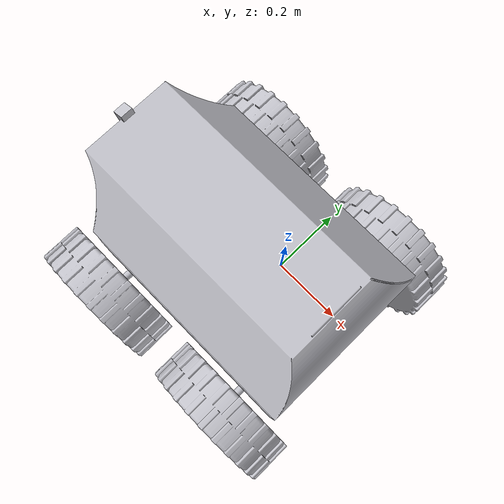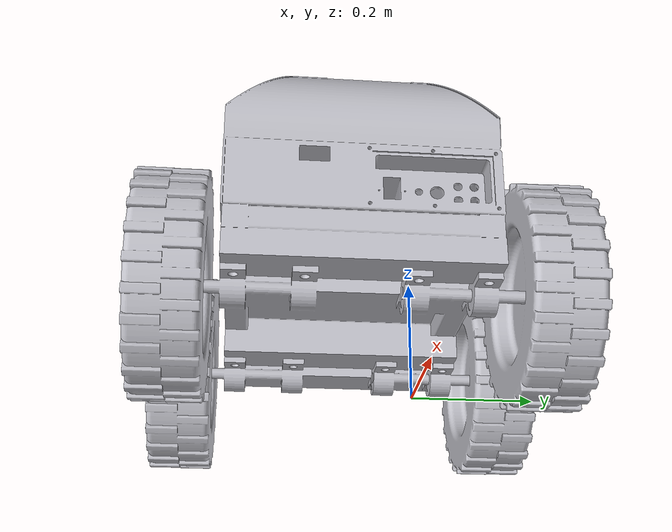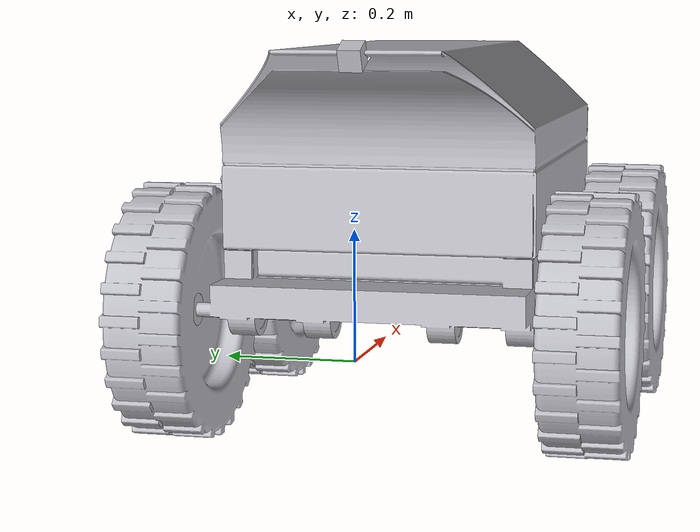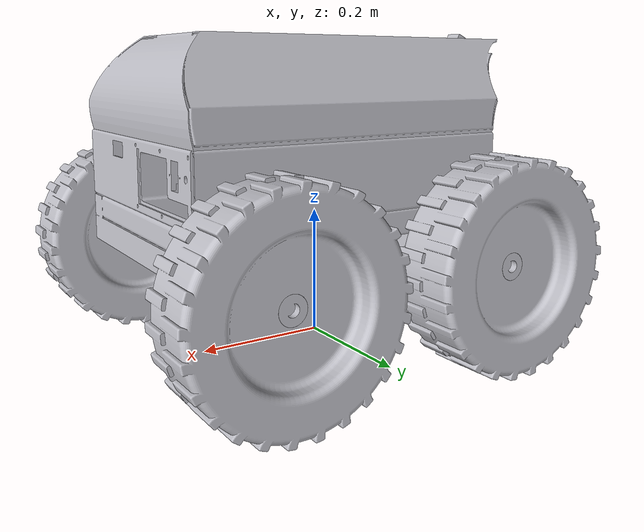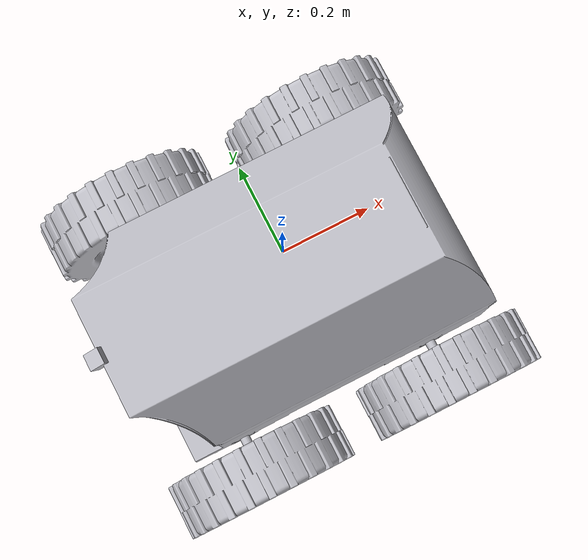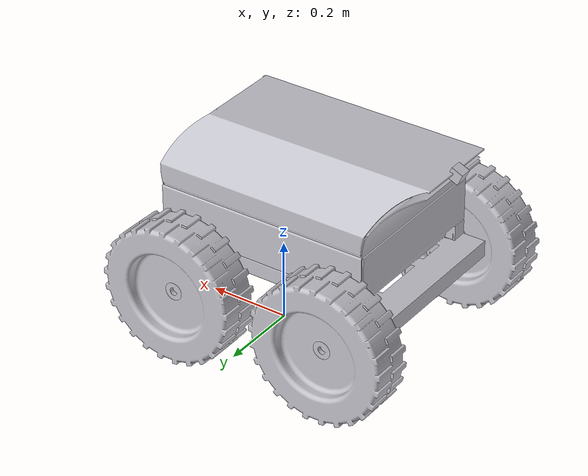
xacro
<robot name="Robot" xmlns:xacro="http://www.ros.org/wiki/xacro">

<xacro:include filename="$(find robot_description)/urdf/materials.xacro" />
<xacro:include filename="$(find robot_description)/urdf/Robot.trans" />
<xacro:include filename="$(find robot_description)/urdf/Robot.gazebo" />

<link name="d455_link">
  <visual>
    <geometry>
      <box size="0.03 0.03 0.03"/>  <!-- Approximate size of RealSense D455 -->
    </geometry>
    <material name="silver"/>
  </visual>
</link>

<link name="base_link">
  <inertial>
    <origin xyz="-0.027189401658204503 -0.10037080143514658 0.19143879147079398" rpy="0 0 0"/>
    <mass value="81.09346205830776"/>
    <inertia ixx="2.243447" iyy="4.174531" izz="5.087121" ixy="-0.041061" iyz="-0.01048" ixz="-0.019335"/>
  </inertial>
  <visual>
    <origin xyz="0 0 0" rpy="0 0 0"/>
    <geometry>
      <mesh filename="package://robot_description/meshes/base_link.stl" scale="0.001 0.001 0.001"/>
    </geometry>
    <material name="silver"/>
  </visual>
  <collision>
    <origin xyz="0 0 0" rpy="0 0 0"/>
    <geometry>
      <mesh filename="package://robot_description/meshes/base_link.stl" scale="0.001 0.001 0.001"/>
    </geometry>
  </collision>
</link>

<link name="tireBL_1">
  <inertial>
    <origin xyz="2.12193177473452e-07 -0.020000200783962835 4.323851252596711e-07" rpy="0 0 0"/>
    <mass value="7.4513344158555475"/>
    <inertia ixx="0.071689" iyy="0.1314" izz="0.071689" ixy="-0.0" iyz="0.0" ixz="0.0"/>
  </inertial>
  <visual>
    <origin xyz="0.242773 -0.201013 -0.115439" rpy="0 0 0"/>
    <geometry>
      <mesh filename="package://robot_description/meshes/tireBL_1.stl" scale="0.001 0.001 0.001"/>
    </geometry>
    <material name="silver"/>
  </visual>
  <collision>
    <origin xyz="0.242773 -0.201013 -0.115439" rpy="0 0 0"/>
    <geometry>
      <mesh filename="package://robot_description/meshes/tireBL_1.stl" scale="0.001 0.001 0.001"/>
    </geometry>
  </collision>
</link>

<link name="tireFL_1">
  <inertial>
    <origin xyz="2.1219299420338622e-07 -0.020000200783962696 4.3238511950038916e-07" rpy="0 0 0"/>
    <mass value="7.451334415875281"/>
    <inertia ixx="0.071689" iyy="0.1314" izz="0.071689" ixy="-0.0" iyz="0.0" ixz="0.0"/>
  </inertial>
  <visual>
    <origin xyz="-0.164977 -0.201013 -0.115439" rpy="0 0 0"/>
    <geometry>
      <mesh filename="package://robot_description/meshes/tireFL_1.stl" scale="0.001 0.001 0.001"/>
    </geometry>
    <material name="silver"/>
  </visual>
  <collision>
    <origin xyz="-0.164977 -0.201013 -0.115439" rpy="0 0 0"/>
    <geometry>
      <mesh filename="package://robot_description/meshes/tireFL_1.stl" scale="0.001 0.001 0.001"/>
    </geometry>
  </collision>
</link>

<link name="tireFR_1">
  <inertial>
    <origin xyz="1.3894525133228974e-07 0.019999759216116797 4.144680840895143e-07" rpy="0 0 0"/>
    <mass value="7.45133441585625"/>
    <inertia ixx="0.071689" iyy="0.1314" izz="0.071689" ixy="0.0" iyz="-0.0" ixz="0.0"/>
  </inertial>
  <visual>
    <origin xyz="-0.164977 0.405587 -0.115439" rpy="0 0 0"/>
    <geometry>
      <mesh filename="package://robot_description/meshes/tireFR_1.stl" scale="0.001 0.001 0.001"/>
    </geometry>
    <material name="silver"/>
  </visual>
  <collision>
    <origin xyz="-0.164977 0.405587 -0.115439" rpy="0 0 0"/>
    <geometry>
      <mesh filename="package://robot_description/meshes/tireFR_1.stl" scale="0.001 0.001 0.001"/>
    </geometry>
  </collision>
</link>

<link name="tireBR_1">
  <inertial>
    <origin xyz="1.3894525327518004e-07 0.019999759216117796 4.1446808517198175e-07" rpy="0 0 0"/>
    <mass value="7.451334415856812"/>
    <inertia ixx="0.071689" iyy="0.1314" izz="0.071689" ixy="0.0" iyz="-0.0" ixz="0.0"/>
  </inertial>
  <visual>
    <origin xyz="0.242773 0.405587 -0.115439" rpy="0 0 0"/>
    <geometry>
      <mesh filename="package://robot_description/meshes/tireBR_1.stl" scale="0.001 0.001 0.001"/>
    </geometry>
    <material name="silver"/>
  </visual>
  <collision>
    <origin xyz="0.242773 0.405587 -0.115439" rpy="0 0 0"/>
    <geometry>
      <mesh filename="package://robot_description/meshes/tireBR_1.stl" scale="0.001 0.001 0.001"/>
    </geometry>
  </collision>
</link>

<joint name="Revolute_5" type="continuous">
  <origin xyz="-0.242773 0.201013 0.115439" rpy="0 0 0"/>
  <parent link="base_link"/>
  <child link="tireBL_1"/>
  <axis xyz="0.0 -1.0 0.0"/>
</joint>

<joint name="Revolute_6" type="continuous">
  <origin xyz="0.164977 0.201013 0.115439" rpy="0 0 0"/>
  <parent link="base_link"/>
  <child link="tireFL_1"/>
  <axis xyz="0.0 -1.0 0.0"/>
</joint>

<joint name="Revolute_7" type="continuous">
  <origin xyz="0.164977 -0.405587 0.115439" rpy="0 0 0"/>
  <parent link="base_link"/>
  <child link="tireFR_1"/>
  <axis xyz="0.0 -1.0 0.0"/>
</joint>

<joint name="Revolute_8" type="continuous">
  <origin xyz="-0.242773 -0.405587 0.115439" rpy="0 0 0"/>
  <parent link="base_link"/>
  <child link="tireBR_1"/>
  <axis xyz="0.0 -1.0 0.0"/>
</joint>

<joint name="d455_mount_joint" type="fixed">
  <parent link="base_link"/>  <!-- ✅ Attaches camera to robot -->
  <child link="d455_link"/>   <!-- ✅ Camera link -->
  <origin xyz="-0.395 -0.1 0.47" rpy="3.14 2.72 0"/>  <!-- Adjust position -->
</joint>

<link name="imu_link" />

  <joint
    name="imu_link_joint"
    type="fixed">
    <origin
      xyz="0 0 0"
      rpy="0 0 0" />
    <parent
      link="base_link" />
    <child
      link="imu_link" />
    <axis
      xyz="0 0 0" />
  </joint>

<!-- front camera -->
  <gazebo reference="d455_link">
    <sensor type="camera" name="front_camera">
      <update_rate>30.0</update_rate>
      <camera name="head_front">
        <horizontal_fov>1.57</horizontal_fov>
        <vertical_fov>1.04</vertical_fov>
        <image>
          <width>1280</width>
          <height>720</height>
          <format>R8G8B8</format>
        </image>
        <clip>
          <near>0.02</near>
          <far>300</far>
        </clip>
        <noise>
          <type>gaussian</type>
          <!-- Noise is sampled independently per pixel on each frame.
               That pixel's noise value is added to each of its color
               channels, which at that point lie in the range [0,1]. -->
          <mean>0.0</mean>
          <stddev>0.007</stddev>
        </noise>
      </camera>
      <plugin name="camera_controller" filename="libgazebo_ros_camera.so">
        <alwaysOn>true</alwaysOn>
        <updateRate>30.0</updateRate>
        <cameraName>camera_sim/color</cameraName>
        <imageTopicName>image_raw</imageTopicName>
        <cameraInfoTopicName>camera_info</cameraInfoTopicName>
        <frameName>d455_link</frameName>
        <hackBaseline>0.07</hackBaseline>
        <distortionK1>0.0</distortionK1>
        <distortionK2>0.0</distortionK2>
        <distortionK3>0.0</distortionK3>
        <distortionT1>0.0</distortionT1>
        <distortionT2>0.0</distortionT2>
      </plugin>
    </sensor>
  </gazebo>

<gazebo>
 <plugin name="skid_steer_drive_controller" filename="libgazebo_ros_skid_steer_drive.so">
    <updateRate>100.0</updateRate>
    <robotNamespace>/</robotNamespace>
    <leftFrontJoint>Revolute_6</leftFrontJoint>
    <rightFrontJoint>Revolute_7</rightFrontJoint>
    <leftRearJoint>Revolute_5</leftRearJoint>
    <rightRearJoint>Revolute_8</rightRearJoint>
    <wheelSeparation>0.4</wheelSeparation>
    <wheelSeparationRear>0.4</wheelSeparationRear>
    <wheelDiameter>0.35</wheelDiameter>
    <robotBaseFrame>base_link</robotBaseFrame>
    <torque>40</torque>
    <topicName>cmd_vel</topicName>
    <broadcastTF>false</broadcastTF>
    <odometryTopic>odom</odometryTopic>
    <odometryFrame>odom</odometryFrame>
    <covariance_x>0.001000</covariance_x>
    <covariance_y>0.001000</covariance_y>
    <covariance_yaw>0.100000</covariance_yaw>
  </plugin>
</gazebo>

</robot>

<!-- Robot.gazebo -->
<robot name="Robot" xmlns:xacro="http://www.ros.org/wiki/xacro" >

<xacro:property name="body_color" value="Gazebo/Silver" />

<gazebo>
    <plugin name="p3d_base_controller" filename="libgazebo_ros_p3d.so">
        <alwaysOn>true</alwaysOn>
        <updateRate>50.0</updateRate>
        <bodyName>base_link</bodyName>
        <topicName>pose</topicName>
        <gaussianNoise>0.01</gaussianNoise>
        <frameName>world</frameName>
        <xyzOffsets>0 0 0</xyzOffsets>
        <rpyOffsets>0 0 0</rpyOffsets>
    </plugin>
  </gazebo>

  <gazebo reference="imu_link">
    <gravity>true</gravity>
    <sensor name="imu_sensor" type="imu">
      <always_on>true</always_on>
      <update_rate>100</update_rate>
      <visualize>true</visualize>
      <topic>__default_topic__</topic>
      <plugin filename="libgazebo_ros_imu_sensor.so" name="imu_plugin">
        <topicName>imu/data</topicName>
        <bodyName>imu_link</bodyName>
        <updateRateHZ>100.0</updateRateHZ>
        <gaussianNoise>0.0</gaussianNoise>
        <xyzOffset>0 0 0</xyzOffset>
        <rpyOffset>0 0 0</rpyOffset>
        <frameName>imu_link</frameName>
      </plugin>
      <pose>0 0 0 0 0 0</pose>
    </sensor>
  </gazebo>

<gazebo reference="base_link">
  <material>${body_color}</material>
  <mu1>1</mu1>
  <mu2>1</mu2>
  <selfCollide>true</selfCollide>
  <gravity>true</gravity>
</gazebo>

<gazebo reference="tireBL_1">
  <material>${body_color}</material>
  <mu1>1</mu1>
  <mu2>1</mu2>
  <selfCollide>true</selfCollide>
</gazebo>

<gazebo reference="tireFL_1">
  <material>${body_color}</material>
  <mu1>1</mu1>
  <mu2>1</mu2>
  <selfCollide>true</selfCollide>
</gazebo>

<gazebo reference="tireFR_1">
  <material>${body_color}</material>
  <mu1>1</mu1>
  <mu2>1</mu2>
  <selfCollide>true</selfCollide>
</gazebo>

<gazebo reference="tireBR_1">
  <material>${body_color}</material>
  <mu1>1</mu1>
  <mu2>1</mu2>
  <selfCollide>true</selfCollide>
</gazebo>

</robot>
